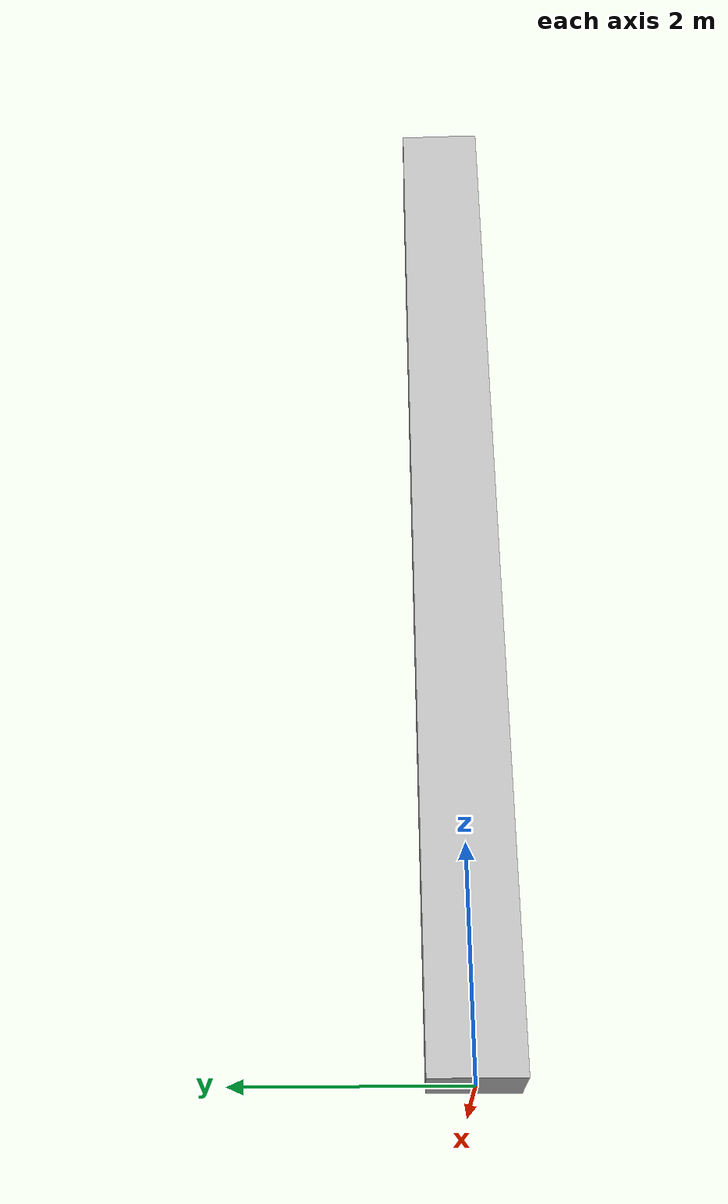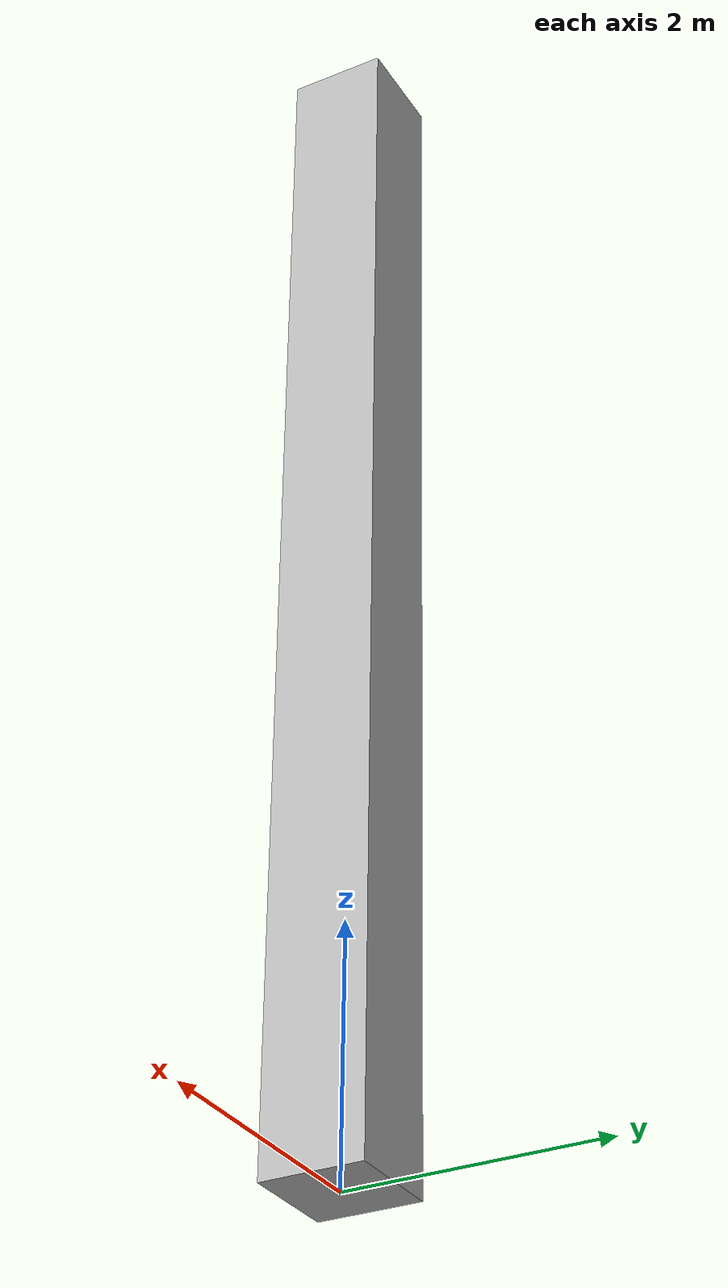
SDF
<?xml version="1.0" ?>

<sdf version="1.5">
<model name='concrete_80_80_1000'>
      <static>1</static>
      <link name="link">
        <pose>0 0 5.0 0 0 0</pose>

        <visual name="visual">
          <geometry>
            <box>
              <size>0.8 0.8 10.0</size>
            </box>
          </geometry>
          <material>
            <script>
              <uri>model:///home/stibipet/mrs_workspace/src/radiation_nodes/gazebo_rad_obstacle/gazebo_models/materials/scripts</uri>
              <uri>model:///home/stibipet/mrs_workspace/src/radiation_nodes/gazebo_rad_obstacle/gazebo_models/materials/textures/</uri>
              <name>concrete/Image</name>
            </script>
          </material>
        </visual>

      </link>

      <plugin name='concrete' filename='libgazebo_rad_obstacle.so'>
        <depth>0.8</depth>
        <width>0.8</width>
        <height>10.0</height>
        <material>concrete</material>
        <density>2.3</density> <!-- g/cm^3 -->
        <mac60kev>0.266</mac60kev> <!-- cm^2/g -->
        <mac600kev>0.06236</mac600kev> <!-- cm^2/g -->
      </plugin>

    </model>
  </sdf>
